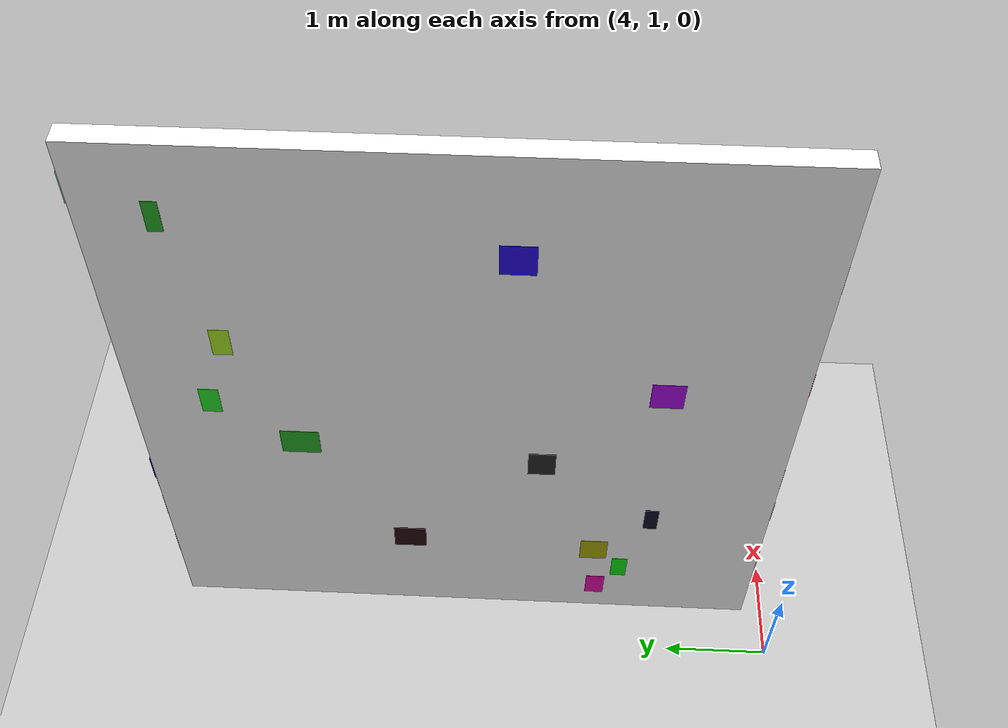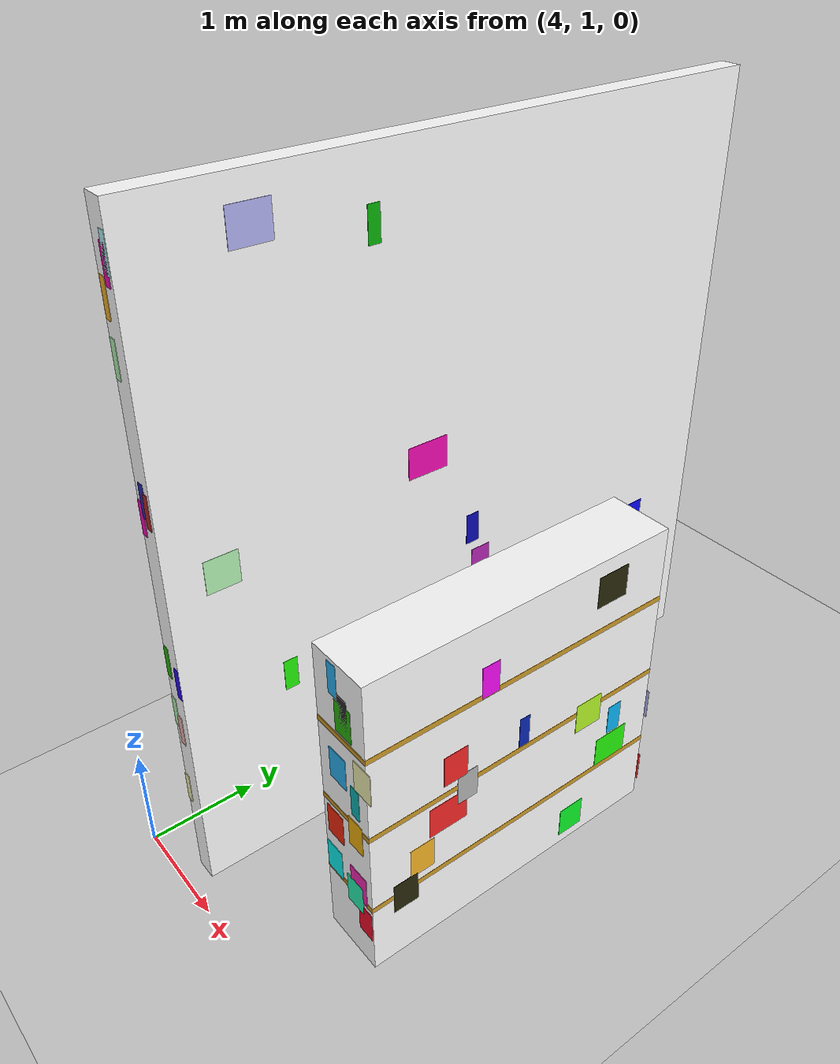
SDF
<sdf version="1.9">
 <world name="default">
  <model name="ground_plane">
   <static>true</static>
   <link name="link">
    <collision name="collision">
     <geometry><plane><normal>0 0 1</normal><size>1 1</size></plane></geometry>
    </collision>
    <visual name="visual">
     <geometry><plane><normal>0 0 1</normal><size>500 500</size></plane></geometry>
     <material>
      <ambient>0.8 0.8 0.8 1</ambient>
      <diffuse>0.8 0.8 0.8 1</diffuse>
      <specular>0.8 0.8 0.8 1</specular>
     </material>
    </visual>
    <inertial>
     <mass>1</mass>
     <inertia><ixx>1</ixx><ixy>0</ixy><ixz>0</ixz><iyy>1</iyy><iyz>0</iyz><izz>1</izz></inertia>
    </inertial>
   </link>
  </model>
  <model name="room_partition_north">
   <static>true</static>
   <pose>4.6 4.1 3 0 0 0</pose>
   <link name="structure">
    <collision name="collision"><geometry><box><size>0.2 5.8 6</size></box></geometry></collision>
    <visual name="surface">
     <geometry><box><size>0.2 5.8 6</size></box></geometry>
     <material>
      <ambient>1 1 1 1</ambient>
      <diffuse>1 1 1 1</diffuse>
      <pbr>
       <metal>
        <albedo_map>model://warehouse_textures/materials/textures/room_partition_north.png</albedo_map>
        <metalness>0</metalness>
        <roughness>1</roughness>
       </metal>
      </pbr>
     </material>
    </visual>
    <visual name="feature_0_0">
     <pose>-0.10200000000000001 2.1961870131766297 0.1731966156131497 0 0 0</pose>
     <geometry><box><size>0.004 0.17442470761049098 0.3</size></box></geometry>
     <material><ambient>0.15 0.95 0.15 1</ambient><diffuse>0.15 0.95 0.15 1</diffuse></material>
    </visual>
    <visual name="feature_0_1">
     <pose>-0.10200000000000001 -1.7388151838334869 0.46146331260249696 0 0 0</pose>
     <geometry><box><size>0.004 0.2881736573309157 0.3</size></box></geometry>
     <material><ambient>0.7 0.04 0.95 1</ambient><diffuse>0.7 0.04 0.95 1</diffuse></material>
    </visual>
    <visual name="feature_0_2">
     <pose>-0.10200000000000001 1.9879930598199795 0.9420433285903349 0 0 0</pose>
     <geometry><box><size>0.004 0.16791759989514624 0.3</size></box></geometry>
     <material><ambient>0.7 0.95 0.15 1</ambient><diffuse>0.7 0.95 0.15 1</diffuse></material>
    </visual>
    <visual name="feature_0_3">
     <pose>-0.10200000000000001 -0.4374287857214474 1.9998288739793626 0 0 0</pose>
     <geometry><box><size>0.004 0.2918106308955343 0.3</size></box></geometry>
     <material><ambient>0.15 0.04 0.95 1</ambient><diffuse>0.15 0.04 0.95 1</diffuse></material>
    </visual>
    <visual name="feature_0_4">
     <pose>-0.10200000000000001 -0.7138683708570526 -0.5691655581310395 0 0 0</pose>
     <geometry><box><size>0.004 0.2503779107054135 0.3</size></box></geometry>
     <material><ambient>0.15 0.15 0.15 1</ambient><diffuse>0.15 0.15 0.15 1</diffuse></material>
    </visual>
    <visual name="feature_0_5">
     <pose>-0.10200000000000001 -1.5542152083736909 -2.2545623900225458 0 0 0</pose>
     <geometry><box><size>0.004 0.15225614200809703 0.3</size></box></geometry>
     <material><ambient>0.04 0.95 0.04 1</ambient><diffuse>0.04 0.95 0.04 1</diffuse></material>
    </visual>
    <visual name="feature_0_6">
     <pose>-0.10200000000000001 -1.7881865858097248 -1.3880695350349839 0 0 0</pose>
     <geometry><box><size>0.004 0.13158450102762542 0.3</size></box></geometry>
     <material><ambient>0.04 0.04 0.15 1</ambient><diffuse>0.04 0.04 0.15 1</diffuse></material>
    </visual>
    <visual name="feature_0_7">
     <pose>-0.10200000000000001 1.4649710746762818 -0.37248549812417053 0 0 0</pose>
     <geometry><box><size>0.004 0.3510652175656582 0.3</size></box></geometry>
     <material><ambient>0.15 0.7 0.15 1</ambient><diffuse>0.15 0.7 0.15 1</diffuse></material>
    </visual>
    <visual name="feature_0_8">
     <pose>-0.10200000000000001 2.2841608323067435 2.321284751580298 0 0 0</pose>
     <geometry><box><size>0.004 0.1258561456362311 0.3</size></box></geometry>
     <material><ambient>0.15 0.7 0.15 1</ambient><diffuse>0.15 0.7 0.15 1</diffuse></material>
    </visual>
    <visual name="feature_0_9">
     <pose>-0.10200000000000001 -1.3356152798643366 -2.6017153583800443 0 0 0</pose>
     <geometry><box><size>0.004 0.18385360421409264 0.3</size></box></geometry>
     <material><ambient>0.95 0.04 0.7 1</ambient><diffuse>0.95 0.04 0.7 1</diffuse></material>
    </visual>
    <visual name="feature_0_10">
     <pose>-0.10200000000000001 0.5323142537270678 -1.8574961119536537 0 0 0</pose>
     <geometry><box><size>0.004 0.3143721058863611 0.3</size></box></geometry>
     <material><ambient>0.15 0.04 0.04 1</ambient><diffuse>0.15 0.04 0.04 1</diffuse></material>
    </visual>
    <visual name="feature_0_11">
     <pose>-0.10200000000000001 -1.2812514483751745 -1.9545153764474867 0 0 0</pose>
     <geometry><box><size>0.004 0.2633172959472546 0.3</size></box></geometry>
     <material><ambient>0.7 0.7 0.04 1</ambient><diffuse>0.7 0.7 0.04 1</diffuse></material>
    </visual>
    <visual name="feature_1_0">
     <pose>0.10200000000000001 0.0676545822701895 -1.383385717452624 0 0 0</pose>
     <geometry><box><size>0.004 0.3742813283955341 0.3</size></box></geometry>
     <material><ambient>0.04 0.04 0.15 1</ambient><diffuse>0.04 0.04 0.15 1</diffuse></material>
    </visual>
    <visual name="feature_1_1">
     <pose>0.10200000000000001 0.29122800133395366 -2.3905956358381677 0 0 0</pose>
     <geometry><box><size>0.004 0.31543398565250924 0.3</size></box></geometry>
     <material><ambient>0.15 0.7 0.15 1</ambient><diffuse>0.15 0.7 0.15 1</diffuse></material>
    </visual>
    <visual name="feature_1_2">
     <pose>0.10200000000000001 -0.9558474961947265 2.4233803566094823 0 0 0</pose>
     <geometry><box><size>0.004 0.10993739273196551 0.3</size></box></geometry>
     <material><ambient>0.04 0.7 0.04 1</ambient><diffuse>0.04 0.7 0.04 1</diffuse></material>
    </visual>
    <visual name="feature_1_3">
     <pose>0.10200000000000001 2.1236686812467376 -1.2941294686250722 0 0 0</pose>
     <geometry><box><size>0.004 0.26950949776683764 0.3</size></box></geometry>
     <material><ambient>0.04 0.04 0.95 1</ambient><diffuse>0.04 0.04 0.95 1</diffuse></material>
    </visual>
    <visual name="feature_1_4">
     <pose>0.10200000000000001 0.09960015254756804 -0.9402946421273379 0 0 0</pose>
     <geometry><box><size>0.004 0.20102138921678223 0.3</size></box></geometry>
     <material><ambient>0.7 0.15 0.7 1</ambient><diffuse>0.7 0.15 0.7 1</diffuse></material>
    </visual>
    <visual name="feature_1_5">
     <pose>0.10200000000000001 -2.431989535124329 0.08121166094542387 0 0 0</pose>
     <geometry><box><size>0.004 0.29479244175545744 0.3</size></box></geometry>
     <material><ambient>0.7 0.95 0.7 1</ambient><diffuse>0.7 0.95 0.7 1</diffuse></material>
    </visual>
    <visual name="feature_1_6">
     <pose>0.10200000000000001 -1.937226908779074 -1.18661370683603 0 0 0</pose>
     <geometry><box><size>0.004 0.12813826527377084 0.3</size></box></geometry>
     <material><ambient>0.15 0.95 0.04 1</ambient><diffuse>0.15 0.95 0.04 1</diffuse></material>
    </visual>
    <visual name="feature_1_7">
     <pose>0.10200000000000001 -0.4937822407527206 0.35670988639466694 0 0 0</pose>
     <geometry><box><size>0.004 0.39557730347396347 0.3</size></box></geometry>
     <material><ambient>0.95 0.04 0.7 1</ambient><diffuse>0.95 0.04 0.7 1</diffuse></material>
    </visual>
    <visual name="feature_1_8">
     <pose>0.10200000000000001 -1.0654907766462458 -1.7192638018085846 0 0 0</pose>
     <geometry><box><size>0.004 0.37925116302619055 0.3</size></box></geometry>
     <material><ambient>0.95 0.95 0.7 1</ambient><diffuse>0.95 0.95 0.7 1</diffuse></material>
    </visual>
    <visual name="feature_1_9">
     <pose>0.10200000000000001 -1.931687933645829 2.6357564002525624 0 0 0</pose>
     <geometry><box><size>0.004 0.34580424255755243 0.3</size></box></geometry>
     <material><ambient>0.7 0.7 0.95 1</ambient><diffuse>0.7 0.7 0.95 1</diffuse></material>
    </visual>
    <visual name="feature_1_10">
     <pose>0.10200000000000001 0.002313553832542503 -0.5483663588496506 0 0 0</pose>
     <geometry><box><size>0.004 0.1371016083376358 0.3</size></box></geometry>
     <material><ambient>0.04 0.04 0.7 1</ambient><diffuse>0.04 0.04 0.7 1</diffuse></material>
    </visual>
    <visual name="feature_1_11">
     <pose>0.10200000000000001 1.4771010500427568 -2.067134620360548 0 0 0</pose>
     <geometry><box><size>0.004 0.25865005646091377 0.3</size></box></geometry>
     <material><ambient>0.15 0.15 0.95 1</ambient><diffuse>0.15 0.15 0.95 1</diffuse></material>
    </visual>
    <visual name="feature_2_0">
     <pose>-0.06012323420444048 -2.9019999999999997 -0.6524099204835005 0 0 0</pose>
     <geometry><box><size>0.06999999999999999 0.004 0.3</size></box></geometry>
     <material><ambient>0.15 0.7 0.04 1</ambient><diffuse>0.15 0.7 0.04 1</diffuse></material>
    </visual>
    <visual name="feature_2_1">
     <pose>-0.06455482679895964 -2.9019999999999997 0.6708852009758566 0 0 0</pose>
     <geometry><box><size>0.06999999999999999 0.004 0.3</size></box></geometry>
     <material><ambient>0.95 0.04 0.7 1</ambient><diffuse>0.95 0.04 0.7 1</diffuse></material>
    </visual>
    <visual name="feature_2_2">
     <pose>0.03271148689503185 -2.9019999999999997 0.7688418102202048 0 0 0</pose>
     <geometry><box><size>0.06999999999999999 0.004 0.3</size></box></geometry>
     <material><ambient>0.7 0.15 0.15 1</ambient><diffuse>0.7 0.15 0.15 1</diffuse></material>
    </visual>
    <visual name="feature_2_3">
     <pose>-0.051921238011332624 -2.9019999999999997 2.3241213081950125 0 0 0</pose>
     <geometry><box><size>0.06999999999999999 0.004 0.3</size></box></geometry>
     <material><ambient>0.95 0.7 0.15 1</ambient><diffuse>0.95 0.7 0.15 1</diffuse></material>
    </visual>
    <visual name="feature_2_4">
     <pose>0.06117527078091366 -2.9019999999999997 2.6451895682102835 0 0 0</pose>
     <geometry><box><size>0.06999999999999999 0.004 0.3</size></box></geometry>
     <material><ambient>0.7 0.95 0.95 1</ambient><diffuse>0.7 0.95 0.95 1</diffuse></material>
    </visual>
    <visual name="feature_2_5">
     <pose>-0.07293445011822318 -2.9019999999999997 -1.171626675991661 0 0 0</pose>
     <geometry><box><size>0.06999999999999999 0.004 0.3</size></box></geometry>
     <material><ambient>0.7 0.95 0.7 1</ambient><diffuse>0.7 0.95 0.7 1</diffuse></material>
    </visual>
    <visual name="feature_2_6">
     <pose>-0.01662142659450669 -2.9019999999999997 -1.3358295062377963 0 0 0</pose>
     <geometry><box><size>0.06999999999999999 0.004 0.3</size></box></geometry>
     <material><ambient>0.95 0.7 0.7 1</ambient><diffuse>0.95 0.7 0.7 1</diffuse></material>
    </visual>
    <visual name="feature_2_7">
     <pose>0.06896919967062905 -2.9019999999999997 -0.7904638252518332 0 0 0</pose>
     <geometry><box><size>0.06999999999999999 0.004 0.3</size></box></geometry>
     <material><ambient>0.15 0.04 0.95 1</ambient><diffuse>0.15 0.04 0.95 1</diffuse></material>
    </visual>
    <visual name="feature_2_8">
     <pose>0.03434495563750714 -2.9019999999999997 2.56690646416555 0 0 0</pose>
     <geometry><box><size>0.06999999999999999 0.004 0.3</size></box></geometry>
     <material><ambient>0.95 0.04 0.7 1</ambient><diffuse>0.95 0.04 0.7 1</diffuse></material>
    </visual>
    <visual name="feature_2_9">
     <pose>-0.05843846625891885 -2.9019999999999997 1.9006949580055092 0 0 0</pose>
     <geometry><box><size>0.06999999999999999 0.004 0.3</size></box></geometry>
     <material><ambient>0.7 0.95 0.7 1</ambient><diffuse>0.7 0.95 0.7 1</diffuse></material>
    </visual>
    <visual name="feature_2_10">
     <pose>-0.010804893021479245 -2.9019999999999997 0.8344176799770211 0 0 0</pose>
     <geometry><box><size>0.06999999999999999 0.004 0.3</size></box></geometry>
     <material><ambient>0.15 0.15 0.7 1</ambient><diffuse>0.15 0.15 0.7 1</diffuse></material>
    </visual>
    <visual name="feature_2_11">
     <pose>-0.07207719750909151 -2.9019999999999997 -2.0275504960125392 0 0 0</pose>
     <geometry><box><size>0.06999999999999999 0.004 0.3</size></box></geometry>
     <material><ambient>0.95 0.95 0.7 1</ambient><diffuse>0.95 0.95 0.7 1</diffuse></material>
    </visual>
    <visual name="feature_3_0">
     <pose>-0.061557175602958474 2.9019999999999997 -1.4756159432560971 0 0 0</pose>
     <geometry><box><size>0.06999999999999999 0.004 0.3</size></box></geometry>
     <material><ambient>0.95 0.7 0.15 1</ambient><diffuse>0.95 0.7 0.15 1</diffuse></material>
    </visual>
    <visual name="feature_3_1">
     <pose>0.030166582601801037 2.9019999999999997 -0.24181237557915258 0 0 0</pose>
     <geometry><box><size>0.06999999999999999 0.004 0.3</size></box></geometry>
     <material><ambient>0.95 0.95 0.04 1</ambient><diffuse>0.95 0.95 0.04 1</diffuse></material>
    </visual>
    <visual name="feature_3_2">
     <pose>-0.025186596468803966 2.9019999999999997 1.0615499178528345 0 0 0</pose>
     <geometry><box><size>0.06999999999999999 0.004 0.3</size></box></geometry>
     <material><ambient>0.7 0.04 0.95 1</ambient><diffuse>0.7 0.04 0.95 1</diffuse></material>
    </visual>
    <visual name="feature_3_3">
     <pose>0.021265604044612404 2.9019999999999997 2.106613044702101 0 0 0</pose>
     <geometry><box><size>0.06999999999999999 0.004 0.3</size></box></geometry>
     <material><ambient>0.7 0.7 0.95 1</ambient><diffuse>0.7 0.7 0.95 1</diffuse></material>
    </visual>
    <visual name="feature_3_4">
     <pose>-0.0641916185876778 2.9019999999999997 -1.0324422003114573 0 0 0</pose>
     <geometry><box><size>0.06999999999999999 0.004 0.3</size></box></geometry>
     <material><ambient>0.04 0.7 0.7 1</ambient><diffuse>0.04 0.7 0.7 1</diffuse></material>
    </visual>
    <visual name="feature_3_5">
     <pose>-0.00895938454851472 2.9019999999999997 1.0862014166296161 0 0 0</pose>
     <geometry><box><size>0.06999999999999999 0.004 0.3</size></box></geometry>
     <material><ambient>0.95 0.7 0.15 1</ambient><diffuse>0.95 0.7 0.15 1</diffuse></material>
    </visual>
    <visual name="feature_3_6">
     <pose>-0.08167361802806333 2.9019999999999997 -0.8597978719302948 0 0 0</pose>
     <geometry><box><size>0.06999999999999999 0.004 0.3</size></box></geometry>
     <material><ambient>0.15 0.15 0.7 1</ambient><diffuse>0.15 0.15 0.7 1</diffuse></material>
    </visual>
    <visual name="feature_3_7">
     <pose>0.04503419139047436 2.9019999999999997 -1.6974197110613864 0 0 0</pose>
     <geometry><box><size>0.06999999999999999 0.004 0.3</size></box></geometry>
     <material><ambient>0.7 0.15 0.15 1</ambient><diffuse>0.7 0.15 0.15 1</diffuse></material>
    </visual>
    <visual name="feature_3_8">
     <pose>-0.044915466487832255 2.9019999999999997 -1.968288742845946 0 0 0</pose>
     <geometry><box><size>0.06999999999999999 0.004 0.3</size></box></geometry>
     <material><ambient>0.95 0.04 0.04 1</ambient><diffuse>0.95 0.04 0.04 1</diffuse></material>
    </visual>
    <visual name="feature_3_9">
     <pose>-0.07738602368564768 2.9019999999999997 2.5788554463354716 0 0 0</pose>
     <geometry><box><size>0.06999999999999999 0.004 0.3</size></box></geometry>
     <material><ambient>0.04 0.15 0.15 1</ambient><diffuse>0.04 0.15 0.15 1</diffuse></material>
    </visual>
    <visual name="feature_3_10">
     <pose>-0.06140924445697178 2.9019999999999997 -2.158303889553638 0 0 0</pose>
     <geometry><box><size>0.06999999999999999 0.004 0.3</size></box></geometry>
     <material><ambient>0.15 0.15 0.7 1</ambient><diffuse>0.15 0.15 0.7 1</diffuse></material>
    </visual>
    <visual name="feature_3_11">
     <pose>0.057058118548446904 2.9019999999999997 -0.23351231349831236 0 0 0</pose>
     <geometry><box><size>0.06999999999999999 0.004 0.3</size></box></geometry>
     <material><ambient>0.95 0.95 0.15 1</ambient><diffuse>0.95 0.95 0.15 1</diffuse></material>
    </visual>
   </link>
  </model>
  <model name="rack_room">
   <static>true</static>
   <pose>6 3.3 1.5 0 0 0</pose>
   <link name="structure">
    <collision name="collision"><geometry><box><size>0.6 3 3</size></box></geometry></collision>
    <visual name="surface">
     <geometry><box><size>0.6 3 3</size></box></geometry>
     <material>
      <ambient>1 1 1 1</ambient>
      <diffuse>1 1 1 1</diffuse>
      <pbr>
       <metal>
        <albedo_map>model://warehouse_textures/materials/textures/rack_room.png</albedo_map>
        <metalness>0</metalness>
        <roughness>1</roughness>
       </metal>
      </pbr>
     </material>
    </visual>
    <visual name="feature_0_0">
     <pose>-0.302 1.0495618834650966 -0.19075688369944932 0 0 0</pose>
     <geometry><box><size>0.004 0.17699397062371064 0.3</size></box></geometry>
     <material><ambient>0.04 0.04 0.15 1</ambient><diffuse>0.04 0.04 0.15 1</diffuse></material>
    </visual>
    <visual name="feature_0_1">
     <pose>-0.302 1.1479710496662283 -0.11561502216515995 0 0 0</pose>
     <geometry><box><size>0.004 0.19958727396602352 0.3</size></box></geometry>
     <material><ambient>0.7 0.04 0.7 1</ambient><diffuse>0.7 0.04 0.7 1</diffuse></material>
    </visual>
    <visual name="feature_0_2">
     <pose>-0.302 -0.9096793447281216 -0.04620070100725604 0 0 0</pose>
     <geometry><box><size>0.004 0.3074998930129229 0.3</size></box></geometry>
     <material><ambient>0.95 0.04 0.7 1</ambient><diffuse>0.95 0.04 0.7 1</diffuse></material>
    </visual>
    <visual name="feature_0_3">
     <pose>-0.302 1.2229781889165448 0.22456684870576504 0 0 0</pose>
     <geometry><box><size>0.004 0.2975595067057767 0.3</size></box></geometry>
     <material><ambient>0.15 0.04 0.04 1</ambient><diffuse>0.15 0.04 0.04 1</diffuse></material>
    </visual>
    <visual name="feature_0_4">
     <pose>-0.302 0.7652470417414177 1.1366951919478878 0 0 0</pose>
     <geometry><box><size>0.004 0.3569545511129746 0.3</size></box></geometry>
     <material><ambient>0.7 0.95 0.15 1</ambient><diffuse>0.7 0.95 0.15 1</diffuse></material>
    </visual>
    <visual name="feature_0_5">
     <pose>-0.302 0.7587034037076121 -0.9228499726810915 0 0 0</pose>
     <geometry><box><size>0.004 0.24187828708951736 0.3</size></box></geometry>
     <material><ambient>0.15 0.7 0.7 1</ambient><diffuse>0.15 0.7 0.7 1</diffuse></material>
    </visual>
    <visual name="feature_0_6">
     <pose>-0.302 1.1350778258201053 1.3448471466043093 0 0 0</pose>
     <geometry><box><size>0.004 0.1884515489277227 0.3</size></box></geometry>
     <material><ambient>0.15 0.04 0.15 1</ambient><diffuse>0.15 0.04 0.15 1</diffuse></material>
    </visual>
    <visual name="feature_0_7">
     <pose>-0.302 -0.26777197355701343 0.2671268222838612 0 0 0</pose>
     <geometry><box><size>0.004 0.21121306881279545 0.3</size></box></geometry>
     <material><ambient>0.04 0.95 0.15 1</ambient><diffuse>0.04 0.95 0.15 1</diffuse></material>
    </visual>
    <visual name="feature_0_8">
     <pose>-0.302 -0.013752125916884461 -1.0555738146624147 0 0 0</pose>
     <geometry><box><size>0.004 0.1607236602320492 0.3</size></box></geometry>
     <material><ambient>0.7 0.04 0.7 1</ambient><diffuse>0.7 0.04 0.7 1</diffuse></material>
    </visual>
    <visual name="feature_0_9">
     <pose>-0.302 0.14022518299037867 1.2430583283889884 0 0 0</pose>
     <geometry><box><size>0.004 0.3914370892456841 0.3</size></box></geometry>
     <material><ambient>0.7 0.95 0.15 1</ambient><diffuse>0.7 0.95 0.15 1</diffuse></material>
    </visual>
    <visual name="feature_0_10">
     <pose>-0.302 -0.32786764627845155 -1.0190482533344587 0 0 0</pose>
     <geometry><box><size>0.004 0.29080275543000383 0.3</size></box></geometry>
     <material><ambient>0.7 0.04 0.04 1</ambient><diffuse>0.7 0.04 0.04 1</diffuse></material>
    </visual>
    <visual name="feature_0_11">
     <pose>-0.302 -0.29890877469386445 -0.8443826387573014 0 0 0</pose>
     <geometry><box><size>0.004 0.25308966718694154 0.3</size></box></geometry>
     <material><ambient>0.15 0.7 0.04 1</ambient><diffuse>0.15 0.7 0.04 1</diffuse></material>
    </visual>
    <visual name="feature_1_0">
     <pose>0.302 -0.6811148612033953 0.2443002758236168 0 0 0</pose>
     <geometry><box><size>0.004 0.23043577986565952 0.3</size></box></geometry>
     <material><ambient>0.95 0.15 0.15 1</ambient><diffuse>0.95 0.15 0.15 1</diffuse></material>
    </visual>
    <visual name="feature_1_1">
     <pose>0.302 0.6474604785420064 -1.251397025735835 0 0 0</pose>
     <geometry><box><size>0.004 0.25972832280232694 0.3</size></box></geometry>
     <material><ambient>0.04 0.95 0.15 1</ambient><diffuse>0.04 0.95 0.15 1</diffuse></material>
    </visual>
    <visual name="feature_1_2">
     <pose>0.302 1.0847680701531515 -0.3057084769649856 0 0 0</pose>
     <geometry><box><size>0.004 0.1471833328987458 0.3</size></box></geometry>
     <material><ambient>0.04 0.7 0.95 1</ambient><diffuse>0.04 0.7 0.95 1</diffuse></material>
    </visual>
    <visual name="feature_1_3">
     <pose>0.302 0.7539891081607861 -0.06039747106638571 0 0 0</pose>
     <geometry><box><size>0.004 0.28439542559734765 0.3</size></box></geometry>
     <material><ambient>0.7 0.95 0.15 1</ambient><diffuse>0.7 0.95 0.15 1</diffuse></material>
    </visual>
    <visual name="feature_1_4">
     <pose>0.302 -1.1755490460071647 -0.8318457879548488 0 0 0</pose>
     <geometry><box><size>0.004 0.23522920414022747 0.3</size></box></geometry>
     <material><ambient>0.15 0.15 0.04 1</ambient><diffuse>0.15 0.15 0.04 1</diffuse></material>
    </visual>
    <visual name="feature_1_5">
     <pose>0.302 0.9007585219177379 1.2050023734579982 0 0 0</pose>
     <geometry><box><size>0.004 0.3165190436501575 0.3</size></box></geometry>
     <material><ambient>0.15 0.15 0.04 1</ambient><diffuse>0.15 0.15 0.04 1</diffuse></material>
    </visual>
    <visual name="feature_1_6">
     <pose>0.302 1.0733256896544467 -0.6237644225164418 0 0 0</pose>
     <geometry><box><size>0.004 0.3549009810655076 0.3</size></box></geometry>
     <material><ambient>0.15 0.95 0.04 1</ambient><diffuse>0.15 0.95 0.04 1</diffuse></material>
    </visual>
    <visual name="feature_1_7">
     <pose>0.302 -0.7528490439879469 -0.22326155492311828 0 0 0</pose>
     <geometry><box><size>0.004 0.3700247630192297 0.3</size></box></geometry>
     <material><ambient>0.95 0.15 0.15 1</ambient><diffuse>0.95 0.15 0.15 1</diffuse></material>
    </visual>
    <visual name="feature_1_8">
     <pose>0.302 -1.0084458479596707 -0.5483061685321885 0 0 0</pose>
     <geometry><box><size>0.004 0.23528166769351277 0.3</size></box></geometry>
     <material><ambient>0.95 0.7 0.15 1</ambient><diffuse>0.95 0.7 0.15 1</diffuse></material>
    </visual>
    <visual name="feature_1_9">
     <pose>0.302 0.020631252144888368 0.18051844009754747 0 0 0</pose>
     <geometry><box><size>0.004 0.10340358506708557 0.3</size></box></geometry>
     <material><ambient>0.04 0.15 0.7 1</ambient><diffuse>0.04 0.15 0.7 1</diffuse></material>
    </visual>
    <visual name="feature_1_10">
     <pose>0.302 -0.562689080230565 -0.03695277684442 0 0 0</pose>
     <geometry><box><size>0.004 0.19863753644957685 0.3</size></box></geometry>
     <material><ambient>0.7 0.7 0.7 1</ambient><diffuse>0.7 0.7 0.7 1</diffuse></material>
    </visual>
    <visual name="feature_1_11">
     <pose>0.302 -0.3523536408341055 0.9333017871890092 0 0 0</pose>
     <geometry><box><size>0.004 0.1696837165357304 0.3</size></box></geometry>
     <material><ambient>0.95 0.04 0.95 1</ambient><diffuse>0.95 0.04 0.95 1</diffuse></material>
    </visual>
    <visual name="feature_2_0">
     <pose>0.07791124140532107 -1.502 -0.810177158348712 0 0 0</pose>
     <geometry><box><size>0.21 0.004 0.3</size></box></geometry>
     <material><ambient>0.15 0.95 0.7 1</ambient><diffuse>0.15 0.95 0.7 1</diffuse></material>
    </visual>
    <visual name="feature_2_1">
     <pose>0.13007312811540805 -1.502 -0.6622660325026974 0 0 0</pose>
     <geometry><box><size>0.21 0.004 0.3</size></box></geometry>
     <material><ambient>0.95 0.15 0.7 1</ambient><diffuse>0.95 0.15 0.7 1</diffuse></material>
    </visual>
    <visual name="feature_2_2">
     <pose>0.12764544723651428 -1.502 -0.09692332205796594 0 0 0</pose>
     <geometry><box><size>0.17627610790473267 0.004 0.3</size></box></geometry>
     <material><ambient>0.95 0.7 0.04 1</ambient><diffuse>0.95 0.7 0.04 1</diffuse></material>
    </visual>
    <visual name="feature_2_3">
     <pose>-0.14802022029872774 -1.502 -0.2186543583462106 0 0 0</pose>
     <geometry><box><size>0.21 0.004 0.3</size></box></geometry>
     <material><ambient>0.95 0.15 0.04 1</ambient><diffuse>0.95 0.15 0.04 1</diffuse></material>
    </visual>
    <visual name="feature_2_4">
     <pose>0.2516890726890181 -1.502 0.5670741675300934 0 0 0</pose>
     <geometry><box><size>0.21 0.004 0.3</size></box></geometry>
     <material><ambient>0.95 0.95 0.7 1</ambient><diffuse>0.95 0.95 0.7 1</diffuse></material>
    </visual>
    <visual name="feature_2_5">
     <pose>0.1438694419226012 -1.502 0.26300771408701595 0 0 0</pose>
     <geometry><box><size>0.10275140207525034 0.004 0.3</size></box></geometry>
     <material><ambient>0.04 0.7 0.7 1</ambient><diffuse>0.04 0.7 0.7 1</diffuse></material>
    </visual>
    <visual name="feature_2_6">
     <pose>-0.1908312564066314 -1.502 -0.6594250937864831 0 0 0</pose>
     <geometry><box><size>0.2010552085893429 0.004 0.3</size></box></geometry>
     <material><ambient>0.04 0.95 0.95 1</ambient><diffuse>0.04 0.95 0.95 1</diffuse></material>
    </visual>
    <visual name="feature_2_7">
     <pose>0.20359878005167353 -1.502 -1.0235377744272447 0 0 0</pose>
     <geometry><box><size>0.17465393959444497 0.004 0.3</size></box></geometry>
     <material><ambient>0.95 0.04 0.15 1</ambient><diffuse>0.95 0.04 0.15 1</diffuse></material>
    </visual>
    <visual name="feature_2_8">
     <pose>-0.06718650225716796 -1.502 1.3156177924115116 0 0 0</pose>
     <geometry><box><size>0.10500425581348048 0.004 0.3</size></box></geometry>
     <material><ambient>0.15 0.7 0.95 1</ambient><diffuse>0.15 0.7 0.95 1</diffuse></material>
    </visual>
    <visual name="feature_2_9">
     <pose>-0.06496534928308498 -1.502 0.4566925689489103 0 0 0</pose>
     <geometry><box><size>0.21 0.004 0.3</size></box></geometry>
     <material><ambient>0.15 0.7 0.95 1</ambient><diffuse>0.15 0.7 0.95 1</diffuse></material>
    </visual>
    <visual name="feature_2_10">
     <pose>0.026997913258726414 -1.502 1.0722506560131437 0 0 0</pose>
     <geometry><box><size>0.1400966651643424 0.004 0.3</size></box></geometry>
     <material><ambient>0.15 0.15 0.15 1</ambient><diffuse>0.15 0.15 0.15 1</diffuse></material>
    </visual>
    <visual name="feature_2_11">
     <pose>0.042370499860677424 -1.502 1.0031309439156422 0 0 0</pose>
     <geometry><box><size>0.19794300899001466 0.004 0.3</size></box></geometry>
     <material><ambient>0.15 0.7 0.04 1</ambient><diffuse>0.15 0.7 0.04 1</diffuse></material>
    </visual>
    <visual name="feature_3_0">
     <pose>0.08923795188119527 1.502 0.22106866834927796 0 0 0</pose>
     <geometry><box><size>0.10803551853930012 0.004 0.3</size></box></geometry>
     <material><ambient>0.15 0.15 0.04 1</ambient><diffuse>0.15 0.15 0.04 1</diffuse></material>
    </visual>
    <visual name="feature_3_1">
     <pose>0.19172803374245057 1.502 0.5189632971735654 0 0 0</pose>
     <geometry><box><size>0.21 0.004 0.3</size></box></geometry>
     <material><ambient>0.04 0.7 0.95 1</ambient><diffuse>0.04 0.7 0.95 1</diffuse></material>
    </visual>
    <visual name="feature_3_2">
     <pose>0.24437714995749055 1.502 -0.3831803251750414 0 0 0</pose>
     <geometry><box><size>0.1662001395105356 0.004 0.3</size></box></geometry>
     <material><ambient>0.7 0.7 0.95 1</ambient><diffuse>0.7 0.7 0.95 1</diffuse></material>
    </visual>
    <visual name="feature_3_3">
     <pose>0.1329178370138855 1.502 -0.02671198765848204 0 0 0</pose>
     <geometry><box><size>0.21 0.004 0.3</size></box></geometry>
     <material><ambient>0.95 0.15 0.15 1</ambient><diffuse>0.95 0.15 0.15 1</diffuse></material>
    </visual>
    <visual name="feature_3_4">
     <pose>-0.06656092226372162 1.502 -0.6731578771282071 0 0 0</pose>
     <geometry><box><size>0.21 0.004 0.3</size></box></geometry>
     <material><ambient>0.95 0.7 0.04 1</ambient><diffuse>0.95 0.7 0.04 1</diffuse></material>
    </visual>
    <visual name="feature_3_5">
     <pose>-0.13401389431590902 1.502 0.6766846421395845 0 0 0</pose>
     <geometry><box><size>0.1481403822407666 0.004 0.3</size></box></geometry>
     <material><ambient>0.15 0.15 0.95 1</ambient><diffuse>0.15 0.15 0.95 1</diffuse></material>
    </visual>
    <visual name="feature_3_6">
     <pose>-0.10582064954226097 1.502 1.3222080468552906 0 0 0</pose>
     <geometry><box><size>0.21 0.004 0.3</size></box></geometry>
     <material><ambient>0.95 0.15 0.15 1</ambient><diffuse>0.95 0.15 0.15 1</diffuse></material>
    </visual>
    <visual name="feature_3_7">
     <pose>0.1398507623801451 1.502 -0.49285565549978727 0 0 0</pose>
     <geometry><box><size>0.21 0.004 0.3</size></box></geometry>
     <material><ambient>0.7 0.7 0.95 1</ambient><diffuse>0.7 0.7 0.95 1</diffuse></material>
    </visual>
    <visual name="feature_3_8">
     <pose>-0.2338807556140683 1.502 -0.32054357458374283 0 0 0</pose>
     <geometry><box><size>0.21 0.004 0.3</size></box></geometry>
     <material><ambient>0.7 0.04 0.7 1</ambient><diffuse>0.7 0.04 0.7 1</diffuse></material>
    </visual>
    <visual name="feature_3_9">
     <pose>0.24417692857140716 1.502 -1.1634582029151428 0 0 0</pose>
     <geometry><box><size>0.152908224697948 0.004 0.3</size></box></geometry>
     <material><ambient>0.95 0.15 0.15 1</ambient><diffuse>0.95 0.15 0.15 1</diffuse></material>
    </visual>
    <visual name="feature_3_10">
     <pose>0.09279430718353893 1.502 1.2008426511886627 0 0 0</pose>
     <geometry><box><size>0.21 0.004 0.3</size></box></geometry>
     <material><ambient>0.15 0.04 0.95 1</ambient><diffuse>0.15 0.04 0.95 1</diffuse></material>
    </visual>
    <visual name="feature_3_11">
     <pose>0.05196174434924428 1.502 -0.7985536949113073 0 0 0</pose>
     <geometry><box><size>0.21 0.004 0.3</size></box></geometry>
     <material><ambient>0.04 0.04 0.04 1</ambient><diffuse>0.04 0.04 0.04 1</diffuse></material>
    </visual>
    <visual name="shelf_marker_0">
     <pose>0 0 -0.8 0 0 0</pose>
     <geometry><box><size>0.605 3.005 0.05</size></box></geometry>
     <material><ambient>0.8 0.6 0.15 1</ambient><diffuse>0.8 0.6 0.15 1</diffuse></material>
    </visual>
    <visual name="shelf_marker_1">
     <geometry><box><size>0.605 3.005 0.05</size></box></geometry>
     <material><ambient>0.8 0.6 0.15 1</ambient><diffuse>0.8 0.6 0.15 1</diffuse></material>
    </visual>
    <visual name="shelf_marker_2">
     <pose>0 0 0.8 0 0 0</pose>
     <geometry><box><size>0.605 3.005 0.05</size></box></geometry>
     <material><ambient>0.8 0.6 0.15 1</ambient><diffuse>0.8 0.6 0.15 1</diffuse></material>
    </visual>
   </link>
  </model>
 </world>
</sdf>
